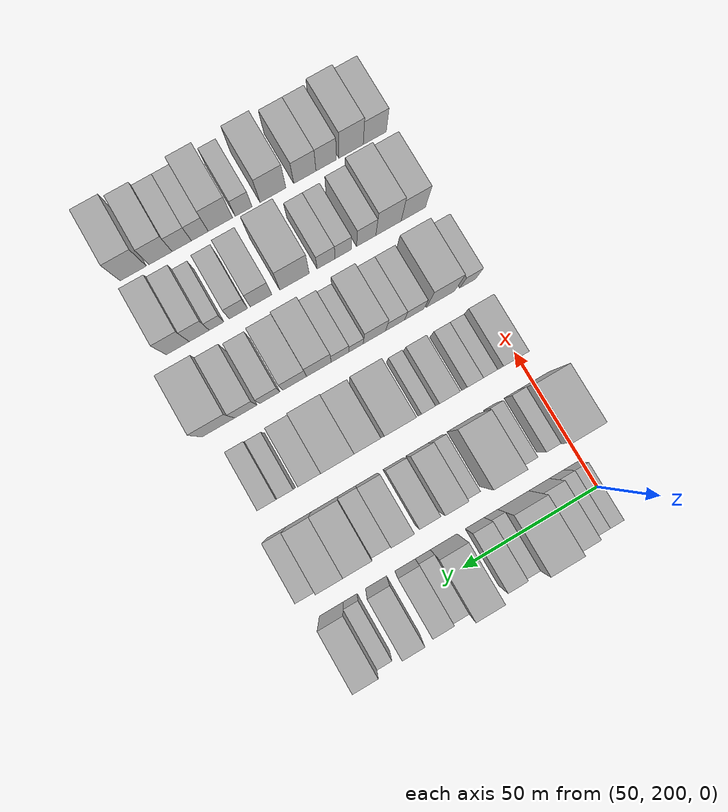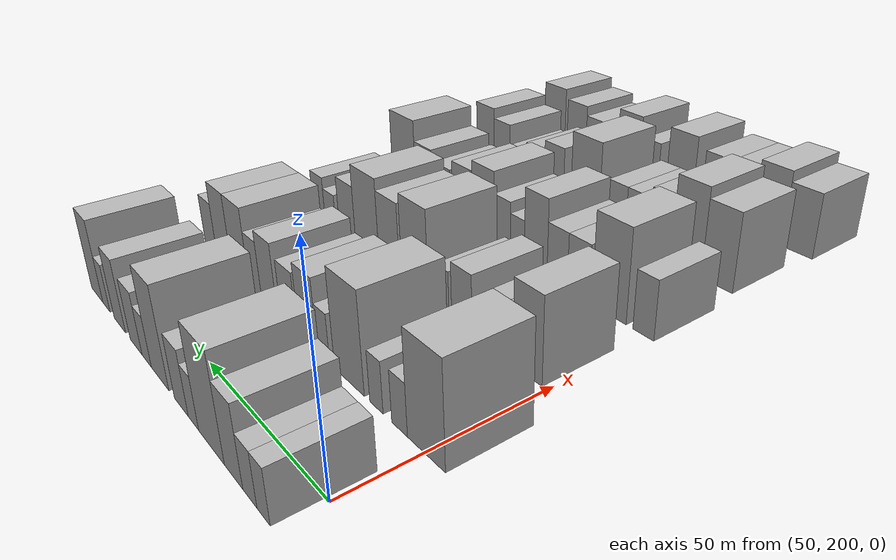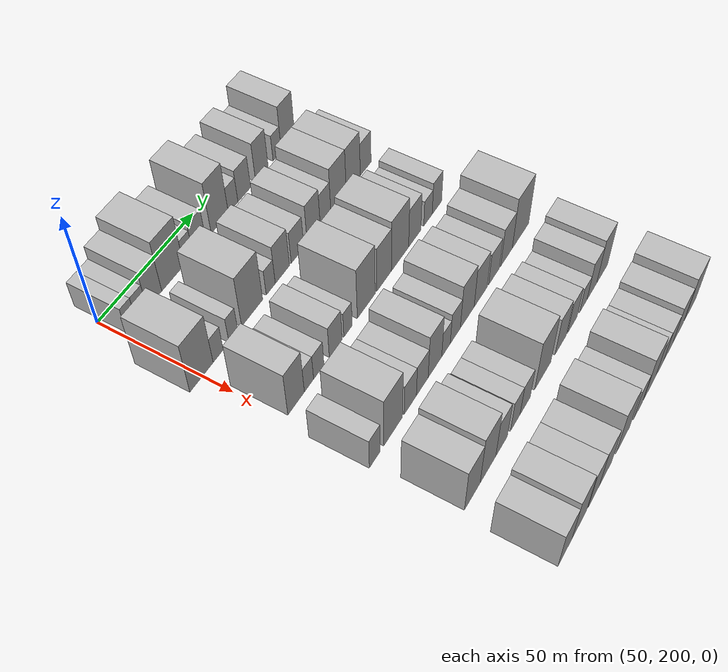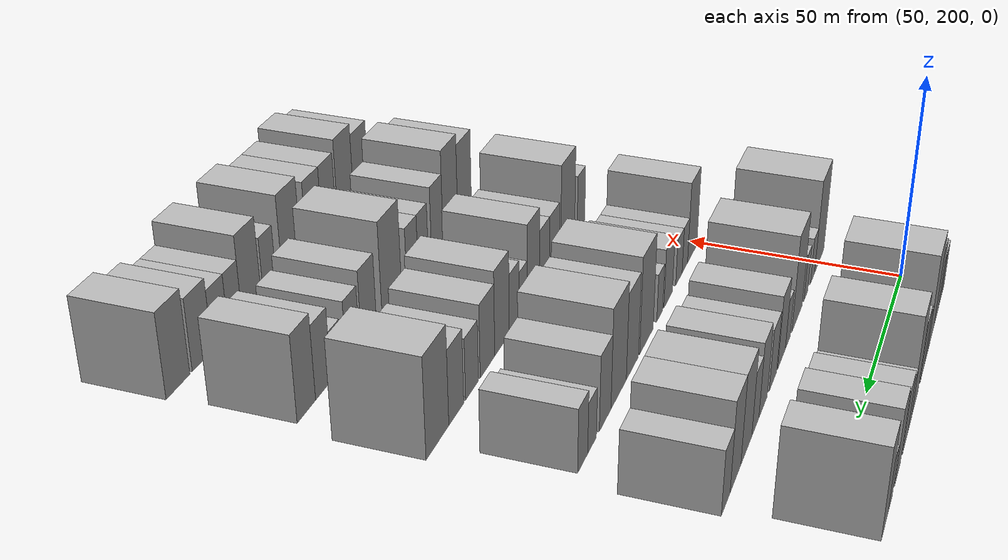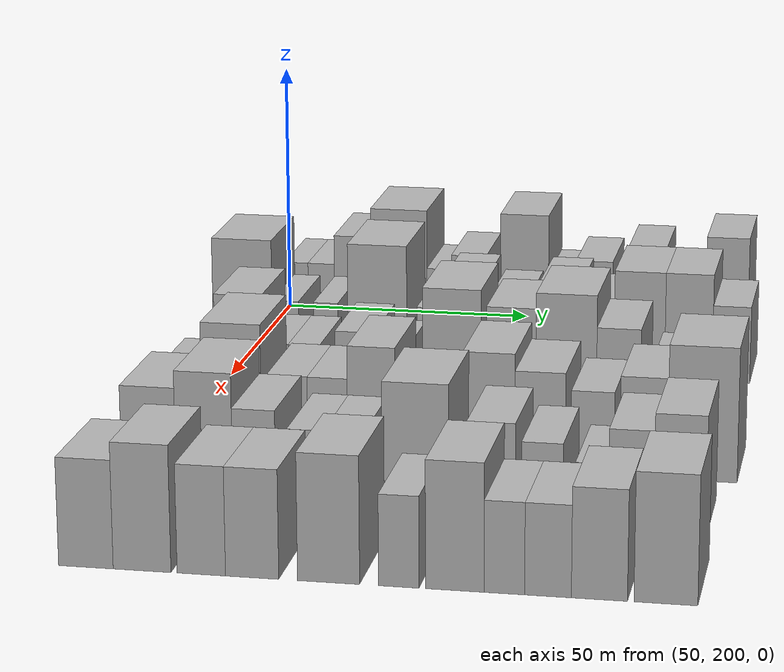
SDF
<sdf version="1.6">
 <world name="default">
  <model name="building_89">
   <static>1</static>
   <pose>50.0000 203.7318 0 0.000000 0.000000 0.000000</pose>
   <link name="link">
    <pose>0 0 6.00 0 0 0</pose>
    <collision name="collision"><geometry><box><size>20.0000 4.8890 12.0000</size></box></geometry></collision>
    <visual name="visual">
     <cast_shadows>0</cast_shadows>
     <geometry><box><size>20.0000 4.8890 12.0000</size></box></geometry>
     <material>
      <script>
       <uri>model://HANNAS_wall/materials/scripts</uri>
       <uri>model://HANNAS_wall/materials/textures</uri>
       <name>vrc/HANNAS_wall</name>
      </script>
     </material>
    </visual>
   </link>
  </model>
  <model name="building_90">
   <static>1</static>
   <pose>50.0000 208.9257 0 0.000000 0.000000 0.000000</pose>
   <link name="link">
    <pose>0 0 6.00 0 0 0</pose>
    <collision name="collision"><geometry><box><size>20.0000 5.4988 12.0000</size></box></geometry></collision>
    <visual name="visual">
     <cast_shadows>0</cast_shadows>
     <geometry><box><size>20.0000 5.4988 12.0000</size></box></geometry>
     <material>
      <script>
       <uri>model://HANNAS_wall/materials/scripts</uri>
       <uri>model://HANNAS_wall/materials/textures</uri>
       <name>vrc/HANNAS_wall</name>
      </script>
     </material>
    </visual>
   </link>
  </model>
  <model name="building_91">
   <static>1</static>
   <pose>50.0000 215.4834 0 0.000000 0.000000 0.000000</pose>
   <link name="link">
    <pose>0 0 9.00 0 0 0</pose>
    <collision name="collision"><geometry><box><size>20.0000 7.6165 18.0000</size></box></geometry></collision>
    <visual name="visual">
     <cast_shadows>0</cast_shadows>
     <geometry><box><size>20.0000 7.6165 18.0000</size></box></geometry>
     <material>
      <script>
       <uri>model://HANNAS_wall/materials/scripts</uri>
       <uri>model://HANNAS_wall/materials/textures</uri>
       <name>vrc/HANNAS_wall</name>
      </script>
     </material>
    </visual>
   </link>
  </model>
  <model name="building_92">
   <static>1</static>
   <pose>50.0000 225.0987 0 0.000000 0.000000 0.000000</pose>
   <link name="link">
    <pose>0 0 12.00 0 0 0</pose>
    <collision name="collision"><geometry><box><size>20.0000 11.6143 24.0000</size></box></geometry></collision>
    <visual name="visual">
     <cast_shadows>0</cast_shadows>
     <geometry><box><size>20.0000 11.6143 24.0000</size></box></geometry>
     <material>
      <script>
       <uri>model://HANNAS_wall/materials/scripts</uri>
       <uri>model://HANNAS_wall/materials/textures</uri>
       <name>vrc/HANNAS_wall</name>
      </script>
     </material>
    </visual>
   </link>
  </model>
  <model name="building_93">
   <static>1</static>
   <pose>50.0000 233.4127 0 0.000000 0.000000 0.000000</pose>
   <link name="link">
    <pose>0 0 6.00 0 0 0</pose>
    <collision name="collision"><geometry><box><size>20.0000 5.0137 12.0000</size></box></geometry></collision>
    <visual name="visual">
     <cast_shadows>0</cast_shadows>
     <geometry><box><size>20.0000 5.0137 12.0000</size></box></geometry>
     <material>
      <script>
       <uri>model://HANNAS_wall/materials/scripts</uri>
       <uri>model://HANNAS_wall/materials/textures</uri>
       <name>vrc/HANNAS_wall</name>
      </script>
     </material>
    </visual>
   </link>
  </model>
  <model name="building_94">
   <static>1</static>
   <pose>50.0000 239.4461 0 0.000000 0.000000 0.000000</pose>
   <link name="link">
    <pose>0 0 7.50 0 0 0</pose>
    <collision name="collision"><geometry><box><size>20.0000 7.0530 15.0000</size></box></geometry></collision>
    <visual name="visual">
     <cast_shadows>0</cast_shadows>
     <geometry><box><size>20.0000 7.0530 15.0000</size></box></geometry>
     <material>
      <script>
       <uri>model://HANNAS_wall/materials/scripts</uri>
       <uri>model://HANNAS_wall/materials/textures</uri>
       <name>vrc/HANNAS_wall</name>
      </script>
     </material>
    </visual>
   </link>
  </model>
  <model name="building_95">
   <static>1</static>
   <pose>50.0000 250.8745 0 0.000000 0.000000 0.000000</pose>
   <link name="link">
    <pose>0 0 12.00 0 0 0</pose>
    <collision name="collision"><geometry><box><size>20.0000 9.8038 24.0000</size></box></geometry></collision>
    <visual name="visual">
     <cast_shadows>0</cast_shadows>
     <geometry><box><size>20.0000 9.8038 24.0000</size></box></geometry>
     <material>
      <script>
       <uri>model://HANNAS_wall/materials/scripts</uri>
       <uri>model://HANNAS_wall/materials/textures</uri>
       <name>vrc/HANNAS_wall</name>
      </script>
     </material>
    </visual>
   </link>
  </model>
  <model name="building_96">
   <static>1</static>
   <pose>50.0000 258.5571 0 0.000000 0.000000 0.000000</pose>
   <link name="link">
    <pose>0 0 6.00 0 0 0</pose>
    <collision name="collision"><geometry><box><size>20.0000 5.5615 12.0000</size></box></geometry></collision>
    <visual name="visual">
     <cast_shadows>0</cast_shadows>
     <geometry><box><size>20.0000 5.5615 12.0000</size></box></geometry>
     <material>
      <script>
       <uri>model://HANNAS_wall/materials/scripts</uri>
       <uri>model://HANNAS_wall/materials/textures</uri>
       <name>vrc/HANNAS_wall</name>
      </script>
     </material>
    </visual>
   </link>
  </model>
  <model name="building_97">
   <static>1</static>
   <pose>50.0000 265.0579 0 0.000000 0.000000 0.000000</pose>
   <link name="link">
    <pose>0 0 7.50 0 0 0</pose>
    <collision name="collision"><geometry><box><size>20.0000 7.4400 15.0000</size></box></geometry></collision>
    <visual name="visual">
     <cast_shadows>0</cast_shadows>
     <geometry><box><size>20.0000 7.4400 15.0000</size></box></geometry>
     <material>
      <script>
       <uri>model://HANNAS_wall/materials/scripts</uri>
       <uri>model://HANNAS_wall/materials/textures</uri>
       <name>vrc/HANNAS_wall</name>
      </script>
     </material>
    </visual>
   </link>
  </model>
  <model name="building_98">
   <static>1</static>
   <pose>50.0000 275.6062 0 0.000000 0.000000 0.000000</pose>
   <link name="link">
    <pose>0 0 9.00 0 0 0</pose>
    <collision name="collision"><geometry><box><size>20.0000 7.6566 18.0000</size></box></geometry></collision>
    <visual name="visual">
     <cast_shadows>0</cast_shadows>
     <geometry><box><size>20.0000 7.6566 18.0000</size></box></geometry>
     <material>
      <script>
       <uri>model://HANNAS_wall/materials/scripts</uri>
       <uri>model://HANNAS_wall/materials/textures</uri>
       <name>vrc/HANNAS_wall</name>
      </script>
     </material>
    </visual>
   </link>
  </model>
  <model name="building_99">
   <static>1</static>
   <pose>50.0000 285.0002 0 0.000000 0.000000 0.000000</pose>
   <link name="link">
    <pose>0 0 6.00 0 0 0</pose>
    <collision name="collision"><geometry><box><size>20.0000 5.1315 12.0000</size></box></geometry></collision>
    <visual name="visual">
     <cast_shadows>0</cast_shadows>
     <geometry><box><size>20.0000 5.1315 12.0000</size></box></geometry>
     <material>
      <script>
       <uri>model://HANNAS_wall/materials/scripts</uri>
       <uri>model://HANNAS_wall/materials/textures</uri>
       <name>vrc/HANNAS_wall</name>
      </script>
     </material>
    </visual>
   </link>
  </model>
  <model name="building_100">
   <static>1</static>
   <pose>50.0000 291.8120 0 0.000000 0.000000 0.000000</pose>
   <link name="link">
    <pose>0 0 10.50 0 0 0</pose>
    <collision name="collision"><geometry><box><size>20.0000 8.4921 21.0000</size></box></geometry></collision>
    <visual name="visual">
     <cast_shadows>0</cast_shadows>
     <geometry><box><size>20.0000 8.4921 21.0000</size></box></geometry>
     <material>
      <script>
       <uri>model://HANNAS_wall/materials/scripts</uri>
       <uri>model://HANNAS_wall/materials/textures</uri>
       <name>vrc/HANNAS_wall</name>
      </script>
     </material>
    </visual>
   </link>
  </model>
  <model name="building_204">
   <static>1</static>
   <pose>79.0000 199.5572 0 0.000000 0.000000 0.000000</pose>
   <link name="link">
    <pose>0 0 12.00 0 0 0</pose>
    <collision name="collision"><geometry><box><size>20.0000 11.8596 24.0000</size></box></geometry></collision>
    <visual name="visual">
     <cast_shadows>0</cast_shadows>
     <geometry><box><size>20.0000 11.8596 24.0000</size></box></geometry>
     <material>
      <script>
       <uri>model://HANNAS_wall/materials/scripts</uri>
       <uri>model://HANNAS_wall/materials/textures</uri>
       <name>vrc/HANNAS_wall</name>
      </script>
     </material>
    </visual>
   </link>
  </model>
  <model name="building_205">
   <static>1</static>
   <pose>79.0000 208.1271 0 0.000000 0.000000 0.000000</pose>
   <link name="link">
    <pose>0 0 6.00 0 0 0</pose>
    <collision name="collision"><geometry><box><size>20.0000 5.2803 12.0000</size></box></geometry></collision>
    <visual name="visual">
     <cast_shadows>0</cast_shadows>
     <geometry><box><size>20.0000 5.2803 12.0000</size></box></geometry>
     <material>
      <script>
       <uri>model://HANNAS_wall/materials/scripts</uri>
       <uri>model://HANNAS_wall/materials/textures</uri>
       <name>vrc/HANNAS_wall</name>
      </script>
     </material>
    </visual>
   </link>
  </model>
  <model name="building_206">
   <static>1</static>
   <pose>79.0000 216.1721 0 0.000000 0.000000 0.000000</pose>
   <link name="link">
    <pose>0 0 6.00 0 0 0</pose>
    <collision name="collision"><geometry><box><size>20.0000 4.8096 12.0000</size></box></geometry></collision>
    <visual name="visual">
     <cast_shadows>0</cast_shadows>
     <geometry><box><size>20.0000 4.8096 12.0000</size></box></geometry>
     <material>
      <script>
       <uri>model://HANNAS_wall/materials/scripts</uri>
       <uri>model://HANNAS_wall/materials/textures</uri>
       <name>vrc/HANNAS_wall</name>
      </script>
     </material>
    </visual>
   </link>
  </model>
  <model name="building_207">
   <static>1</static>
   <pose>79.0000 226.3813 0 0.000000 0.000000 0.000000</pose>
   <link name="link">
    <pose>0 0 12.00 0 0 0</pose>
    <collision name="collision"><geometry><box><size>20.0000 11.6088 24.0000</size></box></geometry></collision>
    <visual name="visual">
     <cast_shadows>0</cast_shadows>
     <geometry><box><size>20.0000 11.6088 24.0000</size></box></geometry>
     <material>
      <script>
       <uri>model://HANNAS_wall/materials/scripts</uri>
       <uri>model://HANNAS_wall/materials/textures</uri>
       <name>vrc/HANNAS_wall</name>
      </script>
     </material>
    </visual>
   </link>
  </model>
  <model name="building_208">
   <static>1</static>
   <pose>79.0000 236.7543 0 0.000000 0.000000 0.000000</pose>
   <link name="link">
    <pose>0 0 6.00 0 0 0</pose>
    <collision name="collision"><geometry><box><size>20.0000 5.1371 12.0000</size></box></geometry></collision>
    <visual name="visual">
     <cast_shadows>0</cast_shadows>
     <geometry><box><size>20.0000 5.1371 12.0000</size></box></geometry>
     <material>
      <script>
       <uri>model://HANNAS_wall/materials/scripts</uri>
       <uri>model://HANNAS_wall/materials/textures</uri>
       <name>vrc/HANNAS_wall</name>
      </script>
     </material>
    </visual>
   </link>
  </model>
  <model name="building_209">
   <static>1</static>
   <pose>79.0000 243.4227 0 0.000000 0.000000 0.000000</pose>
   <link name="link">
    <pose>0 0 9.00 0 0 0</pose>
    <collision name="collision"><geometry><box><size>20.0000 8.1998 18.0000</size></box></geometry></collision>
    <visual name="visual">
     <cast_shadows>0</cast_shadows>
     <geometry><box><size>20.0000 8.1998 18.0000</size></box></geometry>
     <material>
      <script>
       <uri>model://HANNAS_wall/materials/scripts</uri>
       <uri>model://HANNAS_wall/materials/textures</uri>
       <name>vrc/HANNAS_wall</name>
      </script>
     </material>
    </visual>
   </link>
  </model>
  <model name="building_210">
   <static>1</static>
   <pose>79.0000 252.2629 0 0.000000 0.000000 0.000000</pose>
   <link name="link">
    <pose>0 0 7.50 0 0 0</pose>
    <collision name="collision"><geometry><box><size>20.0000 7.4805 15.0000</size></box></geometry></collision>
    <visual name="visual">
     <cast_shadows>0</cast_shadows>
     <geometry><box><size>20.0000 7.4805 15.0000</size></box></geometry>
     <material>
      <script>
       <uri>model://HANNAS_wall/materials/scripts</uri>
       <uri>model://HANNAS_wall/materials/textures</uri>
       <name>vrc/HANNAS_wall</name>
      </script>
     </material>
    </visual>
   </link>
  </model>
  <model name="building_211">
   <static>1</static>
   <pose>79.0000 261.9998 0 0.000000 0.000000 0.000000</pose>
   <link name="link">
    <pose>0 0 9.00 0 0 0</pose>
    <collision name="collision"><geometry><box><size>20.0000 7.9934 18.0000</size></box></geometry></collision>
    <visual name="visual">
     <cast_shadows>0</cast_shadows>
     <geometry><box><size>20.0000 7.9934 18.0000</size></box></geometry>
     <material>
      <script>
       <uri>model://HANNAS_wall/materials/scripts</uri>
       <uri>model://HANNAS_wall/materials/textures</uri>
       <name>vrc/HANNAS_wall</name>
      </script>
     </material>
    </visual>
   </link>
  </model>
  <model name="building_212">
   <static>1</static>
   <pose>79.0000 269.2817 0 0.000000 0.000000 0.000000</pose>
   <link name="link">
    <pose>0 0 7.50 0 0 0</pose>
    <collision name="collision"><geometry><box><size>20.0000 6.5704 15.0000</size></box></geometry></collision>
    <visual name="visual">
     <cast_shadows>0</cast_shadows>
     <geometry><box><size>20.0000 6.5704 15.0000</size></box></geometry>
     <material>
      <script>
       <uri>model://HANNAS_wall/materials/scripts</uri>
       <uri>model://HANNAS_wall/materials/textures</uri>
       <name>vrc/HANNAS_wall</name>
      </script>
     </material>
    </visual>
   </link>
  </model>
  <model name="building_213">
   <static>1</static>
   <pose>79.0000 277.4435 0 0.000000 0.000000 0.000000</pose>
   <link name="link">
    <pose>0 0 10.50 0 0 0</pose>
    <collision name="collision"><geometry><box><size>20.0000 9.7532 21.0000</size></box></geometry></collision>
    <visual name="visual">
     <cast_shadows>0</cast_shadows>
     <geometry><box><size>20.0000 9.7532 21.0000</size></box></geometry>
     <material>
      <script>
       <uri>model://HANNAS_wall/materials/scripts</uri>
       <uri>model://HANNAS_wall/materials/textures</uri>
       <name>vrc/HANNAS_wall</name>
      </script>
     </material>
    </visual>
   </link>
  </model>
  <model name="building_214">
   <static>1</static>
   <pose>79.0000 286.8701 0 0.000000 0.000000 0.000000</pose>
   <link name="link">
    <pose>0 0 10.50 0 0 0</pose>
    <collision name="collision"><geometry><box><size>20.0000 9.0999 21.0000</size></box></geometry></collision>
    <visual name="visual">
     <cast_shadows>0</cast_shadows>
     <geometry><box><size>20.0000 9.0999 21.0000</size></box></geometry>
     <material>
      <script>
       <uri>model://HANNAS_wall/materials/scripts</uri>
       <uri>model://HANNAS_wall/materials/textures</uri>
       <name>vrc/HANNAS_wall</name>
      </script>
     </material>
    </visual>
   </link>
  </model>
  <model name="building_215">
   <static>1</static>
   <pose>79.0000 295.0030 0 0.000000 0.000000 0.000000</pose>
   <link name="link">
    <pose>0 0 7.50 0 0 0</pose>
    <collision name="collision"><geometry><box><size>20.0000 7.1659 15.0000</size></box></geometry></collision>
    <visual name="visual">
     <cast_shadows>0</cast_shadows>
     <geometry><box><size>20.0000 7.1659 15.0000</size></box></geometry>
     <material>
      <script>
       <uri>model://HANNAS_wall/materials/scripts</uri>
       <uri>model://HANNAS_wall/materials/textures</uri>
       <name>vrc/HANNAS_wall</name>
      </script>
     </material>
    </visual>
   </link>
  </model>
  <model name="building_314">
   <static>1</static>
   <pose>108.0000 205.8668 0 0.000000 0.000000 0.000000</pose>
   <link name="link">
    <pose>0 0 10.50 0 0 0</pose>
    <collision name="collision"><geometry><box><size>20.0000 8.9134 21.0000</size></box></geometry></collision>
    <visual name="visual">
     <cast_shadows>0</cast_shadows>
     <geometry><box><size>20.0000 8.9134 21.0000</size></box></geometry>
     <material>
      <script>
       <uri>model://HANNAS_wall/materials/scripts</uri>
       <uri>model://HANNAS_wall/materials/textures</uri>
       <name>vrc/HANNAS_wall</name>
      </script>
     </material>
    </visual>
   </link>
  </model>
  <model name="building_315">
   <static>1</static>
   <pose>108.0000 212.8710 0 0.000000 0.000000 0.000000</pose>
   <link name="link">
    <pose>0 0 6.00 0 0 0</pose>
    <collision name="collision"><geometry><box><size>20.0000 5.0951 12.0000</size></box></geometry></collision>
    <visual name="visual">
     <cast_shadows>0</cast_shadows>
     <geometry><box><size>20.0000 5.0951 12.0000</size></box></geometry>
     <material>
      <script>
       <uri>model://HANNAS_wall/materials/scripts</uri>
       <uri>model://HANNAS_wall/materials/textures</uri>
       <name>vrc/HANNAS_wall</name>
      </script>
     </material>
    </visual>
   </link>
  </model>
  <model name="building_316">
   <static>1</static>
   <pose>108.0000 218.3369 0 0.000000 0.000000 0.000000</pose>
   <link name="link">
    <pose>0 0 6.00 0 0 0</pose>
    <collision name="collision"><geometry><box><size>20.0000 5.8365 12.0000</size></box></geometry></collision>
    <visual name="visual">
     <cast_shadows>0</cast_shadows>
     <geometry><box><size>20.0000 5.8365 12.0000</size></box></geometry>
     <material>
      <script>
       <uri>model://HANNAS_wall/materials/scripts</uri>
       <uri>model://HANNAS_wall/materials/textures</uri>
       <name>vrc/HANNAS_wall</name>
      </script>
     </material>
    </visual>
   </link>
  </model>
  <model name="building_317">
   <static>1</static>
   <pose>108.0000 227.9437 0 0.000000 0.000000 0.000000</pose>
   <link name="link">
    <pose>0 0 7.50 0 0 0</pose>
    <collision name="collision"><geometry><box><size>20.0000 7.3772 15.0000</size></box></geometry></collision>
    <visual name="visual">
     <cast_shadows>0</cast_shadows>
     <geometry><box><size>20.0000 7.3772 15.0000</size></box></geometry>
     <material>
      <script>
       <uri>model://HANNAS_wall/materials/scripts</uri>
       <uri>model://HANNAS_wall/materials/textures</uri>
       <name>vrc/HANNAS_wall</name>
      </script>
     </material>
    </visual>
   </link>
  </model>
  <model name="building_318">
   <static>1</static>
   <pose>108.0000 235.1284 0 0.000000 0.000000 0.000000</pose>
   <link name="link">
    <pose>0 0 6.00 0 0 0</pose>
    <collision name="collision"><geometry><box><size>20.0000 4.9922 12.0000</size></box></geometry></collision>
    <visual name="visual">
     <cast_shadows>0</cast_shadows>
     <geometry><box><size>20.0000 4.9922 12.0000</size></box></geometry>
     <material>
      <script>
       <uri>model://HANNAS_wall/materials/scripts</uri>
       <uri>model://HANNAS_wall/materials/textures</uri>
       <name>vrc/HANNAS_wall</name>
      </script>
     </material>
    </visual>
   </link>
  </model>
  <model name="building_319">
   <static>1</static>
   <pose>108.0000 246.0510 0 0.000000 0.000000 0.000000</pose>
   <link name="link">
    <pose>0 0 12.00 0 0 0</pose>
    <collision name="collision"><geometry><box><size>20.0000 10.8530 24.0000</size></box></geometry></collision>
    <visual name="visual">
     <cast_shadows>0</cast_shadows>
     <geometry><box><size>20.0000 10.8530 24.0000</size></box></geometry>
     <material>
      <script>
       <uri>model://HANNAS_wall/materials/scripts</uri>
       <uri>model://HANNAS_wall/materials/textures</uri>
       <name>vrc/HANNAS_wall</name>
      </script>
     </material>
    </visual>
   </link>
  </model>
  <model name="building_320">
   <static>1</static>
   <pose>108.0000 257.0501 0 0.000000 0.000000 0.000000</pose>
   <link name="link">
    <pose>0 0 10.50 0 0 0</pose>
    <collision name="collision"><geometry><box><size>20.0000 9.1451 21.0000</size></box></geometry></collision>
    <visual name="visual">
     <cast_shadows>0</cast_shadows>
     <geometry><box><size>20.0000 9.1451 21.0000</size></box></geometry>
     <material>
      <script>
       <uri>model://HANNAS_wall/materials/scripts</uri>
       <uri>model://HANNAS_wall/materials/textures</uri>
       <name>vrc/HANNAS_wall</name>
      </script>
     </material>
    </visual>
   </link>
  </model>
  <model name="building_321">
   <static>1</static>
   <pose>108.0000 267.1891 0 0.000000 0.000000 0.000000</pose>
   <link name="link">
    <pose>0 0 12.00 0 0 0</pose>
    <collision name="collision"><geometry><box><size>20.0000 11.1330 24.0000</size></box></geometry></collision>
    <visual name="visual">
     <cast_shadows>0</cast_shadows>
     <geometry><box><size>20.0000 11.1330 24.0000</size></box></geometry>
     <material>
      <script>
       <uri>model://HANNAS_wall/materials/scripts</uri>
       <uri>model://HANNAS_wall/materials/textures</uri>
       <name>vrc/HANNAS_wall</name>
      </script>
     </material>
    </visual>
   </link>
  </model>
  <model name="building_322">
   <static>1</static>
   <pose>108.0000 276.7841 0 0.000000 0.000000 0.000000</pose>
   <link name="link">
    <pose>0 0 9.00 0 0 0</pose>
    <collision name="collision"><geometry><box><size>20.0000 8.0570 18.0000</size></box></geometry></collision>
    <visual name="visual">
     <cast_shadows>0</cast_shadows>
     <geometry><box><size>20.0000 8.0570 18.0000</size></box></geometry>
     <material>
      <script>
       <uri>model://HANNAS_wall/materials/scripts</uri>
       <uri>model://HANNAS_wall/materials/textures</uri>
       <name>vrc/HANNAS_wall</name>
      </script>
     </material>
    </visual>
   </link>
  </model>
  <model name="building_323">
   <static>1</static>
   <pose>108.0000 285.6609 0 0.000000 0.000000 0.000000</pose>
   <link name="link">
    <pose>0 0 6.00 0 0 0</pose>
    <collision name="collision"><geometry><box><size>20.0000 5.6966 12.0000</size></box></geometry></collision>
    <visual name="visual">
     <cast_shadows>0</cast_shadows>
     <geometry><box><size>20.0000 5.6966 12.0000</size></box></geometry>
     <material>
      <script>
       <uri>model://HANNAS_wall/materials/scripts</uri>
       <uri>model://HANNAS_wall/materials/textures</uri>
       <name>vrc/HANNAS_wall</name>
      </script>
     </material>
    </visual>
   </link>
  </model>
  <model name="building_324">
   <static>1</static>
   <pose>108.0000 291.7438 0 0.000000 0.000000 0.000000</pose>
   <link name="link">
    <pose>0 0 7.50 0 0 0</pose>
    <collision name="collision"><geometry><box><size>20.0000 6.4693 15.0000</size></box></geometry></collision>
    <visual name="visual">
     <cast_shadows>0</cast_shadows>
     <geometry><box><size>20.0000 6.4693 15.0000</size></box></geometry>
     <material>
      <script>
       <uri>model://HANNAS_wall/materials/scripts</uri>
       <uri>model://HANNAS_wall/materials/textures</uri>
       <name>vrc/HANNAS_wall</name>
      </script>
     </material>
    </visual>
   </link>
  </model>
  <model name="building_428">
   <static>1</static>
   <pose>137.0000 201.4101 0 0.000000 0.000000 0.000000</pose>
   <link name="link">
    <pose>0 0 7.50 0 0 0</pose>
    <collision name="collision"><geometry><box><size>20.0000 6.1138 15.0000</size></box></geometry></collision>
    <visual name="visual">
     <cast_shadows>0</cast_shadows>
     <geometry><box><size>20.0000 6.1138 15.0000</size></box></geometry>
     <material>
      <script>
       <uri>model://HANNAS_wall/materials/scripts</uri>
       <uri>model://HANNAS_wall/materials/textures</uri>
       <name>vrc/HANNAS_wall</name>
      </script>
     </material>
    </visual>
   </link>
  </model>
  <model name="building_429">
   <static>1</static>
   <pose>137.0000 211.8383 0 0.000000 0.000000 0.000000</pose>
   <link name="link">
    <pose>0 0 12.00 0 0 0</pose>
    <collision name="collision"><geometry><box><size>20.0000 10.7426 24.0000</size></box></geometry></collision>
    <visual name="visual">
     <cast_shadows>0</cast_shadows>
     <geometry><box><size>20.0000 10.7426 24.0000</size></box></geometry>
     <material>
      <script>
       <uri>model://HANNAS_wall/materials/scripts</uri>
       <uri>model://HANNAS_wall/materials/textures</uri>
       <name>vrc/HANNAS_wall</name>
      </script>
     </material>
    </visual>
   </link>
  </model>
  <model name="building_430">
   <static>1</static>
   <pose>137.0000 221.8565 0 0.000000 0.000000 0.000000</pose>
   <link name="link">
    <pose>0 0 7.50 0 0 0</pose>
    <collision name="collision"><geometry><box><size>20.0000 7.2938 15.0000</size></box></geometry></collision>
    <visual name="visual">
     <cast_shadows>0</cast_shadows>
     <geometry><box><size>20.0000 7.2938 15.0000</size></box></geometry>
     <material>
      <script>
       <uri>model://HANNAS_wall/materials/scripts</uri>
       <uri>model://HANNAS_wall/materials/textures</uri>
       <name>vrc/HANNAS_wall</name>
      </script>
     </material>
    </visual>
   </link>
  </model>
  <model name="building_431">
   <static>1</static>
   <pose>137.0000 229.0662 0 0.000000 0.000000 0.000000</pose>
   <link name="link">
    <pose>0 0 7.50 0 0 0</pose>
    <collision name="collision"><geometry><box><size>20.0000 7.1257 15.0000</size></box></geometry></collision>
    <visual name="visual">
     <cast_shadows>0</cast_shadows>
     <geometry><box><size>20.0000 7.1257 15.0000</size></box></geometry>
     <material>
      <script>
       <uri>model://HANNAS_wall/materials/scripts</uri>
       <uri>model://HANNAS_wall/materials/textures</uri>
       <name>vrc/HANNAS_wall</name>
      </script>
     </material>
    </visual>
   </link>
  </model>
  <model name="building_432">
   <static>1</static>
   <pose>137.0000 236.8566 0 0.000000 0.000000 0.000000</pose>
   <link name="link">
    <pose>0 0 10.50 0 0 0</pose>
    <collision name="collision"><geometry><box><size>20.0000 8.4550 21.0000</size></box></geometry></collision>
    <visual name="visual">
     <cast_shadows>0</cast_shadows>
     <geometry><box><size>20.0000 8.4550 21.0000</size></box></geometry>
     <material>
      <script>
       <uri>model://HANNAS_wall/materials/scripts</uri>
       <uri>model://HANNAS_wall/materials/textures</uri>
       <name>vrc/HANNAS_wall</name>
      </script>
     </material>
    </visual>
   </link>
  </model>
  <model name="building_433">
   <static>1</static>
   <pose>137.0000 243.7936 0 0.000000 0.000000 0.000000</pose>
   <link name="link">
    <pose>0 0 6.00 0 0 0</pose>
    <collision name="collision"><geometry><box><size>20.0000 5.4190 12.0000</size></box></geometry></collision>
    <visual name="visual">
     <cast_shadows>0</cast_shadows>
     <geometry><box><size>20.0000 5.4190 12.0000</size></box></geometry>
     <material>
      <script>
       <uri>model://HANNAS_wall/materials/scripts</uri>
       <uri>model://HANNAS_wall/materials/textures</uri>
       <name>vrc/HANNAS_wall</name>
      </script>
     </material>
    </visual>
   </link>
  </model>
  <model name="building_434">
   <static>1</static>
   <pose>137.0000 249.7533 0 0.000000 0.000000 0.000000</pose>
   <link name="link">
    <pose>0 0 7.50 0 0 0</pose>
    <collision name="collision"><geometry><box><size>20.0000 6.5005 15.0000</size></box></geometry></collision>
    <visual name="visual">
     <cast_shadows>0</cast_shadows>
     <geometry><box><size>20.0000 6.5005 15.0000</size></box></geometry>
     <material>
      <script>
       <uri>model://HANNAS_wall/materials/scripts</uri>
       <uri>model://HANNAS_wall/materials/textures</uri>
       <name>vrc/HANNAS_wall</name>
      </script>
     </material>
    </visual>
   </link>
  </model>
  <model name="building_435">
   <static>1</static>
   <pose>137.0000 257.5814 0 0.000000 0.000000 0.000000</pose>
   <link name="link">
    <pose>0 0 10.50 0 0 0</pose>
    <collision name="collision"><geometry><box><size>20.0000 9.1555 21.0000</size></box></geometry></collision>
    <visual name="visual">
     <cast_shadows>0</cast_shadows>
     <geometry><box><size>20.0000 9.1555 21.0000</size></box></geometry>
     <material>
      <script>
       <uri>model://HANNAS_wall/materials/scripts</uri>
       <uri>model://HANNAS_wall/materials/textures</uri>
       <name>vrc/HANNAS_wall</name>
      </script>
     </material>
    </visual>
   </link>
  </model>
  <model name="building_436">
   <static>1</static>
   <pose>137.0000 266.5619 0 0.000000 0.000000 0.000000</pose>
   <link name="link">
    <pose>0 0 9.00 0 0 0</pose>
    <collision name="collision"><geometry><box><size>20.0000 8.8056 18.0000</size></box></geometry></collision>
    <visual name="visual">
     <cast_shadows>0</cast_shadows>
     <geometry><box><size>20.0000 8.8056 18.0000</size></box></geometry>
     <material>
      <script>
       <uri>model://HANNAS_wall/materials/scripts</uri>
       <uri>model://HANNAS_wall/materials/textures</uri>
       <name>vrc/HANNAS_wall</name>
      </script>
     </material>
    </visual>
   </link>
  </model>
  <model name="building_437">
   <static>1</static>
   <pose>137.0000 275.7042 0 0.000000 0.000000 0.000000</pose>
   <link name="link">
    <pose>0 0 7.50 0 0 0</pose>
    <collision name="collision"><geometry><box><size>20.0000 7.4790 15.0000</size></box></geometry></collision>
    <visual name="visual">
     <cast_shadows>0</cast_shadows>
     <geometry><box><size>20.0000 7.4790 15.0000</size></box></geometry>
     <material>
      <script>
       <uri>model://HANNAS_wall/materials/scripts</uri>
       <uri>model://HANNAS_wall/materials/textures</uri>
       <name>vrc/HANNAS_wall</name>
      </script>
     </material>
    </visual>
   </link>
  </model>
  <model name="building_438">
   <static>1</static>
   <pose>137.0000 284.5654 0 0.000000 0.000000 0.000000</pose>
   <link name="link">
    <pose>0 0 9.00 0 0 0</pose>
    <collision name="collision"><geometry><box><size>20.0000 8.2434 18.0000</size></box></geometry></collision>
    <visual name="visual">
     <cast_shadows>0</cast_shadows>
     <geometry><box><size>20.0000 8.2434 18.0000</size></box></geometry>
     <material>
      <script>
       <uri>model://HANNAS_wall/materials/scripts</uri>
       <uri>model://HANNAS_wall/materials/textures</uri>
       <name>vrc/HANNAS_wall</name>
      </script>
     </material>
    </visual>
   </link>
  </model>
  <model name="building_439">
   <static>1</static>
   <pose>137.0000 294.6777 0 0.000000 0.000000 0.000000</pose>
   <link name="link">
    <pose>0 0 12.00 0 0 0</pose>
    <collision name="collision"><geometry><box><size>20.0000 11.9814 24.0000</size></box></geometry></collision>
    <visual name="visual">
     <cast_shadows>0</cast_shadows>
     <geometry><box><size>20.0000 11.9814 24.0000</size></box></geometry>
     <material>
      <script>
       <uri>model://HANNAS_wall/materials/scripts</uri>
       <uri>model://HANNAS_wall/materials/textures</uri>
       <name>vrc/HANNAS_wall</name>
      </script>
     </material>
    </visual>
   </link>
  </model>
  <model name="building_540">
   <static>1</static>
   <pose>166.0000 204.8888 0 0.000000 0.000000 0.000000</pose>
   <link name="link">
    <pose>0 0 10.50 0 0 0</pose>
    <collision name="collision"><geometry><box><size>20.0000 9.3359 21.0000</size></box></geometry></collision>
    <visual name="visual">
     <cast_shadows>0</cast_shadows>
     <geometry><box><size>20.0000 9.3359 21.0000</size></box></geometry>
     <material>
      <script>
       <uri>model://HANNAS_wall/materials/scripts</uri>
       <uri>model://HANNAS_wall/materials/textures</uri>
       <name>vrc/HANNAS_wall</name>
      </script>
     </material>
    </visual>
   </link>
  </model>
  <model name="building_541">
   <static>1</static>
   <pose>166.0000 214.3976 0 0.000000 0.000000 0.000000</pose>
   <link name="link">
    <pose>0 0 12.00 0 0 0</pose>
    <collision name="collision"><geometry><box><size>20.0000 9.6817 24.0000</size></box></geometry></collision>
    <visual name="visual">
     <cast_shadows>0</cast_shadows>
     <geometry><box><size>20.0000 9.6817 24.0000</size></box></geometry>
     <material>
      <script>
       <uri>model://HANNAS_wall/materials/scripts</uri>
       <uri>model://HANNAS_wall/materials/textures</uri>
       <name>vrc/HANNAS_wall</name>
      </script>
     </material>
    </visual>
   </link>
  </model>
  <model name="building_542">
   <static>1</static>
   <pose>166.0000 222.8965 0 0.000000 0.000000 0.000000</pose>
   <link name="link">
    <pose>0 0 9.00 0 0 0</pose>
    <collision name="collision"><geometry><box><size>20.0000 7.3161 18.0000</size></box></geometry></collision>
    <visual name="visual">
     <cast_shadows>0</cast_shadows>
     <geometry><box><size>20.0000 7.3161 18.0000</size></box></geometry>
     <material>
      <script>
       <uri>model://HANNAS_wall/materials/scripts</uri>
       <uri>model://HANNAS_wall/materials/textures</uri>
       <name>vrc/HANNAS_wall</name>
      </script>
     </material>
    </visual>
   </link>
  </model>
  <model name="building_543">
   <static>1</static>
   <pose>166.0000 231.6594 0 0.000000 0.000000 0.000000</pose>
   <link name="link">
    <pose>0 0 7.50 0 0 0</pose>
    <collision name="collision"><geometry><box><size>20.0000 6.2097 15.0000</size></box></geometry></collision>
    <visual name="visual">
     <cast_shadows>0</cast_shadows>
     <geometry><box><size>20.0000 6.2097 15.0000</size></box></geometry>
     <material>
      <script>
       <uri>model://HANNAS_wall/materials/scripts</uri>
       <uri>model://HANNAS_wall/materials/textures</uri>
       <name>vrc/HANNAS_wall</name>
      </script>
     </material>
    </visual>
   </link>
  </model>
  <model name="building_544">
   <static>1</static>
   <pose>166.0000 238.1368 0 0.000000 0.000000 0.000000</pose>
   <link name="link">
    <pose>0 0 7.50 0 0 0</pose>
    <collision name="collision"><geometry><box><size>20.0000 6.7452 15.0000</size></box></geometry></collision>
    <visual name="visual">
     <cast_shadows>0</cast_shadows>
     <geometry><box><size>20.0000 6.7452 15.0000</size></box></geometry>
     <material>
      <script>
       <uri>model://HANNAS_wall/materials/scripts</uri>
       <uri>model://HANNAS_wall/materials/textures</uri>
       <name>vrc/HANNAS_wall</name>
      </script>
     </material>
    </visual>
   </link>
  </model>
  <model name="building_545">
   <static>1</static>
   <pose>166.0000 250.0473 0 0.000000 0.000000 0.000000</pose>
   <link name="link">
    <pose>0 0 12.00 0 0 0</pose>
    <collision name="collision"><geometry><box><size>20.0000 11.0757 24.0000</size></box></geometry></collision>
    <visual name="visual">
     <cast_shadows>0</cast_shadows>
     <geometry><box><size>20.0000 11.0757 24.0000</size></box></geometry>
     <material>
      <script>
       <uri>model://HANNAS_wall/materials/scripts</uri>
       <uri>model://HANNAS_wall/materials/textures</uri>
       <name>vrc/HANNAS_wall</name>
      </script>
     </material>
    </visual>
   </link>
  </model>
  <model name="building_546">
   <static>1</static>
   <pose>166.0000 262.6087 0 0.000000 0.000000 0.000000</pose>
   <link name="link">
    <pose>0 0 9.00 0 0 0</pose>
    <collision name="collision"><geometry><box><size>20.0000 8.0472 18.0000</size></box></geometry></collision>
    <visual name="visual">
     <cast_shadows>0</cast_shadows>
     <geometry><box><size>20.0000 8.0472 18.0000</size></box></geometry>
     <material>
      <script>
       <uri>model://HANNAS_wall/materials/scripts</uri>
       <uri>model://HANNAS_wall/materials/textures</uri>
       <name>vrc/HANNAS_wall</name>
      </script>
     </material>
    </visual>
   </link>
  </model>
  <model name="building_547">
   <static>1</static>
   <pose>166.0000 271.0574 0 0.000000 0.000000 0.000000</pose>
   <link name="link">
    <pose>0 0 7.50 0 0 0</pose>
    <collision name="collision"><geometry><box><size>20.0000 6.8500 15.0000</size></box></geometry></collision>
    <visual name="visual">
     <cast_shadows>0</cast_shadows>
     <geometry><box><size>20.0000 6.8500 15.0000</size></box></geometry>
     <material>
      <script>
       <uri>model://HANNAS_wall/materials/scripts</uri>
       <uri>model://HANNAS_wall/materials/textures</uri>
       <name>vrc/HANNAS_wall</name>
      </script>
     </material>
    </visual>
   </link>
  </model>
  <model name="building_548">
   <static>1</static>
   <pose>166.0000 279.2066 0 0.000000 0.000000 0.000000</pose>
   <link name="link">
    <pose>0 0 6.00 0 0 0</pose>
    <collision name="collision"><geometry><box><size>20.0000 5.4485 12.0000</size></box></geometry></collision>
    <visual name="visual">
     <cast_shadows>0</cast_shadows>
     <geometry><box><size>20.0000 5.4485 12.0000</size></box></geometry>
     <material>
      <script>
       <uri>model://HANNAS_wall/materials/scripts</uri>
       <uri>model://HANNAS_wall/materials/textures</uri>
       <name>vrc/HANNAS_wall</name>
      </script>
     </material>
    </visual>
   </link>
  </model>
  <model name="building_549">
   <static>1</static>
   <pose>166.0000 285.6441 0 0.000000 0.000000 0.000000</pose>
   <link name="link">
    <pose>0 0 9.00 0 0 0</pose>
    <collision name="collision"><geometry><box><size>20.0000 7.4265 18.0000</size></box></geometry></collision>
    <visual name="visual">
     <cast_shadows>0</cast_shadows>
     <geometry><box><size>20.0000 7.4265 18.0000</size></box></geometry>
     <material>
      <script>
       <uri>model://HANNAS_wall/materials/scripts</uri>
       <uri>model://HANNAS_wall/materials/textures</uri>
       <name>vrc/HANNAS_wall</name>
      </script>
     </material>
    </visual>
   </link>
  </model>
  <model name="building_550">
   <static>1</static>
   <pose>166.0000 293.6053 0 0.000000 0.000000 0.000000</pose>
   <link name="link">
    <pose>0 0 10.50 0 0 0</pose>
    <collision name="collision"><geometry><box><size>20.0000 8.4960 21.0000</size></box></geometry></collision>
    <visual name="visual">
     <cast_shadows>0</cast_shadows>
     <geometry><box><size>20.0000 8.4960 21.0000</size></box></geometry>
     <material>
      <script>
       <uri>model://HANNAS_wall/materials/scripts</uri>
       <uri>model://HANNAS_wall/materials/textures</uri>
       <name>vrc/HANNAS_wall</name>
      </script>
     </material>
    </visual>
   </link>
  </model>
  <model name="building_658">
   <static>1</static>
   <pose>195.0000 202.5961 0 0.000000 0.000000 0.000000</pose>
   <link name="link">
    <pose>0 0 9.00 0 0 0</pose>
    <collision name="collision"><geometry><box><size>20.0000 8.9207 18.0000</size></box></geometry></collision>
    <visual name="visual">
     <cast_shadows>0</cast_shadows>
     <geometry><box><size>20.0000 8.9207 18.0000</size></box></geometry>
     <material>
      <script>
       <uri>model://HANNAS_wall/materials/scripts</uri>
       <uri>model://HANNAS_wall/materials/textures</uri>
       <name>vrc/HANNAS_wall</name>
      </script>
     </material>
    </visual>
   </link>
  </model>
  <model name="building_659">
   <static>1</static>
   <pose>195.0000 211.7466 0 0.000000 0.000000 0.000000</pose>
   <link name="link">
    <pose>0 0 10.50 0 0 0</pose>
    <collision name="collision"><geometry><box><size>20.0000 9.3804 21.0000</size></box></geometry></collision>
    <visual name="visual">
     <cast_shadows>0</cast_shadows>
     <geometry><box><size>20.0000 9.3804 21.0000</size></box></geometry>
     <material>
      <script>
       <uri>model://HANNAS_wall/materials/scripts</uri>
       <uri>model://HANNAS_wall/materials/textures</uri>
       <name>vrc/HANNAS_wall</name>
      </script>
     </material>
    </visual>
   </link>
  </model>
  <model name="building_660">
   <static>1</static>
   <pose>195.0000 221.3405 0 0.000000 0.000000 0.000000</pose>
   <link name="link">
    <pose>0 0 9.00 0 0 0</pose>
    <collision name="collision"><geometry><box><size>20.0000 7.8073 18.0000</size></box></geometry></collision>
    <visual name="visual">
     <cast_shadows>0</cast_shadows>
     <geometry><box><size>20.0000 7.8073 18.0000</size></box></geometry>
     <material>
      <script>
       <uri>model://HANNAS_wall/materials/scripts</uri>
       <uri>model://HANNAS_wall/materials/textures</uri>
       <name>vrc/HANNAS_wall</name>
      </script>
     </material>
    </visual>
   </link>
  </model>
  <model name="building_661">
   <static>1</static>
   <pose>195.0000 229.5123 0 0.000000 0.000000 0.000000</pose>
   <link name="link">
    <pose>0 0 9.00 0 0 0</pose>
    <collision name="collision"><geometry><box><size>20.0000 8.5363 18.0000</size></box></geometry></collision>
    <visual name="visual">
     <cast_shadows>0</cast_shadows>
     <geometry><box><size>20.0000 8.5363 18.0000</size></box></geometry>
     <material>
      <script>
       <uri>model://HANNAS_wall/materials/scripts</uri>
       <uri>model://HANNAS_wall/materials/textures</uri>
       <name>vrc/HANNAS_wall</name>
      </script>
     </material>
    </visual>
   </link>
  </model>
  <model name="building_662">
   <static>1</static>
   <pose>195.0000 241.7135 0 0.000000 0.000000 0.000000</pose>
   <link name="link">
    <pose>0 0 10.50 0 0 0</pose>
    <collision name="collision"><geometry><box><size>20.0000 9.8661 21.0000</size></box></geometry></collision>
    <visual name="visual">
     <cast_shadows>0</cast_shadows>
     <geometry><box><size>20.0000 9.8661 21.0000</size></box></geometry>
     <material>
      <script>
       <uri>model://HANNAS_wall/materials/scripts</uri>
       <uri>model://HANNAS_wall/materials/textures</uri>
       <name>vrc/HANNAS_wall</name>
      </script>
     </material>
    </visual>
   </link>
  </model>
  <model name="building_663">
   <static>1</static>
   <pose>195.0000 252.8442 0 0.000000 0.000000 0.000000</pose>
   <link name="link">
    <pose>0 0 7.50 0 0 0</pose>
    <collision name="collision"><geometry><box><size>20.0000 6.3953 15.0000</size></box></geometry></collision>
    <visual name="visual">
     <cast_shadows>0</cast_shadows>
     <geometry><box><size>20.0000 6.3953 15.0000</size></box></geometry>
     <material>
      <script>
       <uri>model://HANNAS_wall/materials/scripts</uri>
       <uri>model://HANNAS_wall/materials/textures</uri>
       <name>vrc/HANNAS_wall</name>
      </script>
     </material>
    </visual>
   </link>
  </model>
  <model name="building_664">
   <static>1</static>
   <pose>195.0000 261.6245 0 0.000000 0.000000 0.000000</pose>
   <link name="link">
    <pose>0 0 10.50 0 0 0</pose>
    <collision name="collision"><geometry><box><size>20.0000 9.1652 21.0000</size></box></geometry></collision>
    <visual name="visual">
     <cast_shadows>0</cast_shadows>
     <geometry><box><size>20.0000 9.1652 21.0000</size></box></geometry>
     <material>
      <script>
       <uri>model://HANNAS_wall/materials/scripts</uri>
       <uri>model://HANNAS_wall/materials/textures</uri>
       <name>vrc/HANNAS_wall</name>
      </script>
     </material>
    </visual>
   </link>
  </model>
  <model name="building_665">
   <static>1</static>
   <pose>195.0000 269.3686 0 0.000000 0.000000 0.000000</pose>
   <link name="link">
    <pose>0 0 7.50 0 0 0</pose>
    <collision name="collision"><geometry><box><size>20.0000 6.3231 15.0000</size></box></geometry></collision>
    <visual name="visual">
     <cast_shadows>0</cast_shadows>
     <geometry><box><size>20.0000 6.3231 15.0000</size></box></geometry>
     <material>
      <script>
       <uri>model://HANNAS_wall/materials/scripts</uri>
       <uri>model://HANNAS_wall/materials/textures</uri>
       <name>vrc/HANNAS_wall</name>
      </script>
     </material>
    </visual>
   </link>
  </model>
  <model name="building_666">
   <static>1</static>
   <pose>195.0000 276.1526 0 0.000000 0.000000 0.000000</pose>
   <link name="link">
    <pose>0 0 7.50 0 0 0</pose>
    <collision name="collision"><geometry><box><size>20.0000 7.2448 15.0000</size></box></geometry></collision>
    <visual name="visual">
     <cast_shadows>0</cast_shadows>
     <geometry><box><size>20.0000 7.2448 15.0000</size></box></geometry>
     <material>
      <script>
       <uri>model://HANNAS_wall/materials/scripts</uri>
       <uri>model://HANNAS_wall/materials/textures</uri>
       <name>vrc/HANNAS_wall</name>
      </script>
     </material>
    </visual>
   </link>
  </model>
  <model name="building_667">
   <static>1</static>
   <pose>195.0000 284.0965 0 0.000000 0.000000 0.000000</pose>
   <link name="link">
    <pose>0 0 9.00 0 0 0</pose>
    <collision name="collision"><geometry><box><size>20.0000 8.6430 18.0000</size></box></geometry></collision>
    <visual name="visual">
     <cast_shadows>0</cast_shadows>
     <geometry><box><size>20.0000 8.6430 18.0000</size></box></geometry>
     <material>
      <script>
       <uri>model://HANNAS_wall/materials/scripts</uri>
       <uri>model://HANNAS_wall/materials/textures</uri>
       <name>vrc/HANNAS_wall</name>
      </script>
     </material>
    </visual>
   </link>
  </model>
  <model name="building_668">
   <static>1</static>
   <pose>195.0000 294.3032 0 0.000000 0.000000 0.000000</pose>
   <link name="link">
    <pose>0 0 10.50 0 0 0</pose>
    <collision name="collision"><geometry><box><size>20.0000 9.7703 21.0000</size></box></geometry></collision>
    <visual name="visual">
     <cast_shadows>0</cast_shadows>
     <geometry><box><size>20.0000 9.7703 21.0000</size></box></geometry>
     <material>
      <script>
       <uri>model://HANNAS_wall/materials/scripts</uri>
       <uri>model://HANNAS_wall/materials/textures</uri>
       <name>vrc/HANNAS_wall</name>
      </script>
     </material>
    </visual>
   </link>
  </model>
 </world>
</sdf>
